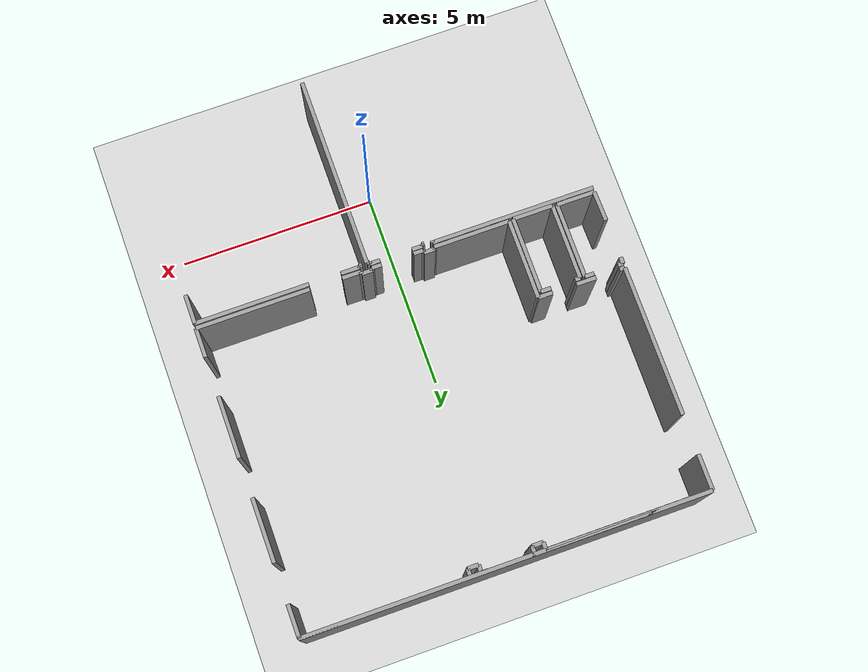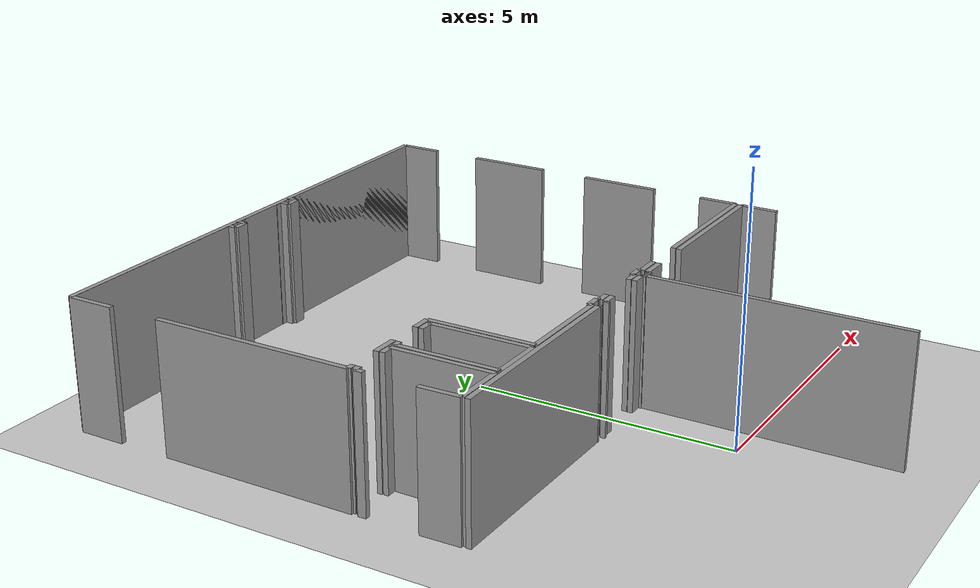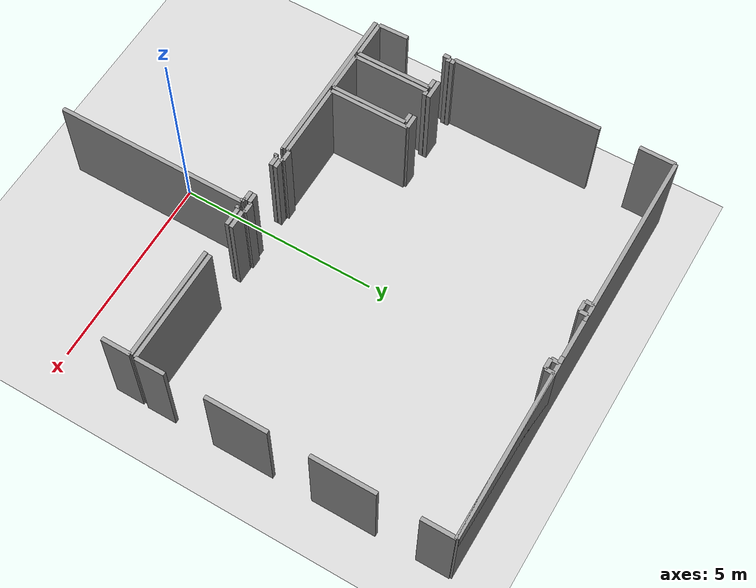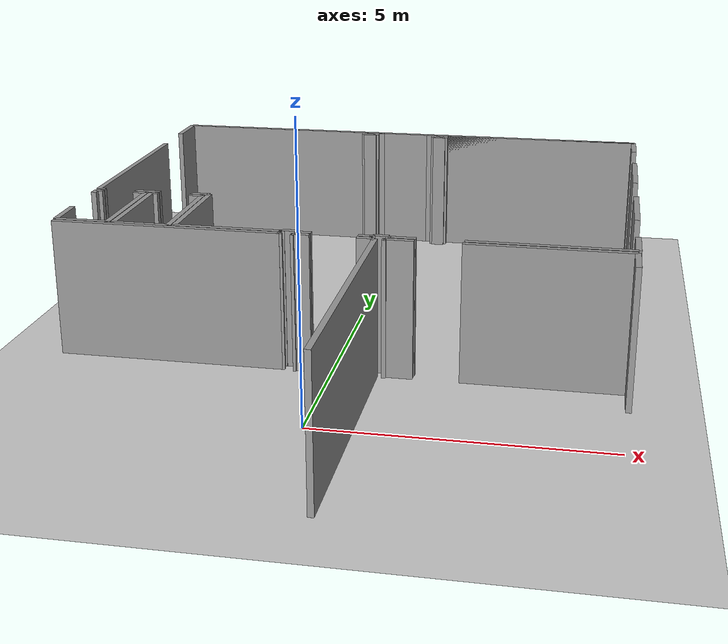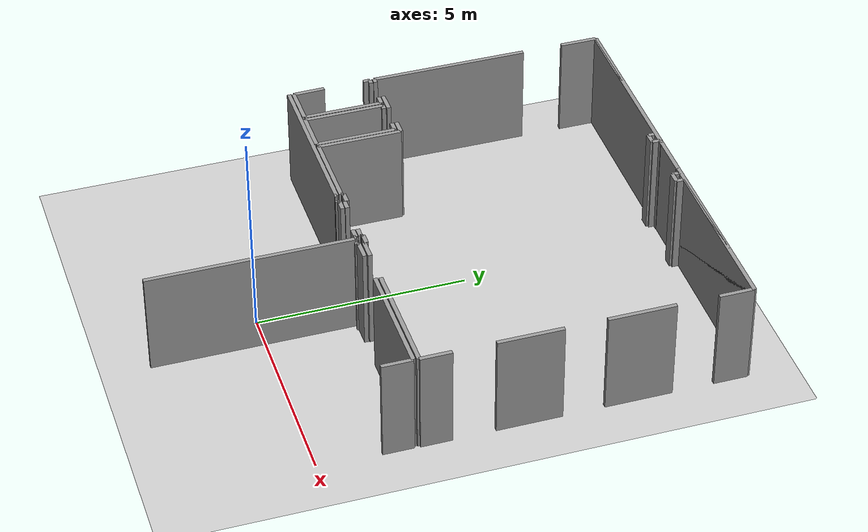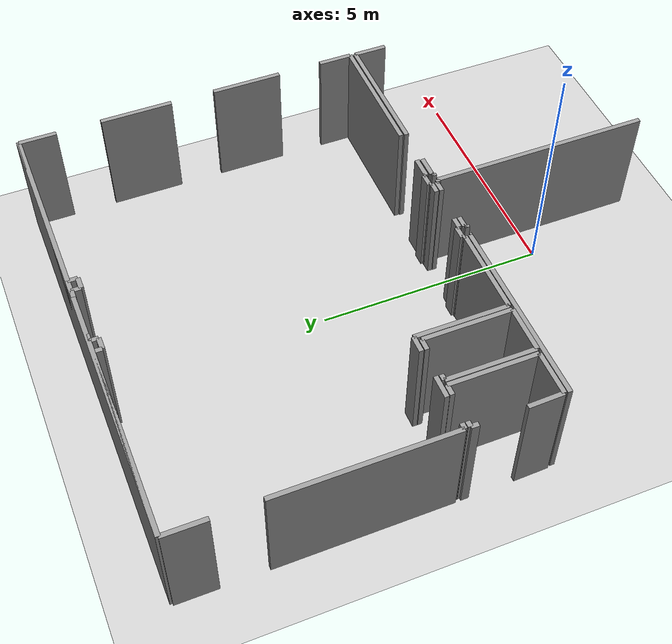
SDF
<sdf version="1.6">
 <world name="default">
  <model name="ground_plane">
   <static>1</static>
   <link name="link">
    <collision name="collision">
     <geometry><plane><normal>0 0 1</normal><size>100 100</size></plane></geometry>
     <surface><friction><ode><mu>100</mu><mu2>50</mu2></ode></friction></surface>
    </collision>
    <visual name="visual">
     <cast_shadows>0</cast_shadows>
     <geometry><plane><normal>0 0 1</normal><size>100 100</size></plane></geometry>
     <material>
      <script><uri>file://media/materials/scripts/gazebo.material</uri><name>Gazebo/Grey</name></script>
     </material>
    </visual>
   </link>
  </model>
  <model name="50009419">
   <static>1</static>
   <link name="Wall_0">
    <collision name="Wall_0_Collision">
     <geometry><box><size>2.84174122724 0.1 2.5</size></box></geometry>
     <pose>1.42087061362 0 1.25 0 0 0</pose>
    </collision>
    <visual name="Wall_0_Visual">
     <pose>1.42087061362 0 1.25 0 0 0</pose>
     <geometry><box><size>2.84174122724 0.1 2.5</size></box></geometry>
     <material>
      <script><uri>file://media/materials/scripts/gazebo.material</uri><name>Gazebo/Grey</name></script>
      <ambient>1 1 1 1</ambient>
     </material>
    </visual>
    <pose>10.086997906 -7.64566279586 0 0 0 3.14159265359</pose>
   </link>
   <link name="Wall_1">
    <collision name="Wall_1_Collision">
     <geometry><box><size>0.470207500476 0.1 2.5</size></box></geometry>
     <pose>0.235103750238 0 1.25 0 0 0</pose>
    </collision>
    <visual name="Wall_1_Visual">
     <pose>0.235103750238 0 1.25 0 0 0</pose>
     <geometry><box><size>0.470207500476 0.1 2.5</size></box></geometry>
     <material>
      <script><uri>file://media/materials/scripts/gazebo.material</uri><name>Gazebo/Grey</name></script>
      <ambient>1 1 1 1</ambient>
     </material>
    </visual>
    <pose>6.43435497176 -7.64566279586 0 0 0 3.14159265359</pose>
   </link>
   <link name="Wall_2">
    <collision name="Wall_2_Collision">
     <geometry><box><size>0.0509550098357 0.1 2.5</size></box></geometry>
     <pose>0.0254775049178 0 1.25 0 0 0</pose>
    </collision>
    <visual name="Wall_2_Visual">
     <pose>0.0254775049178 0 1.25 0 0 0</pose>
     <geometry><box><size>0.0509550098357 0.1 2.5</size></box></geometry>
     <material>
      <script><uri>file://media/materials/scripts/gazebo.material</uri><name>Gazebo/Grey</name></script>
      <ambient>1 1 1 1</ambient>
     </material>
    </visual>
    <pose>5.96414747129 -7.64566279586 0 0 0 1.57079632679</pose>
   </link>
   <link name="Wall_3">
    <collision name="Wall_3_Collision">
     <geometry><box><size>0.273494511073 0.1 2.5</size></box></geometry>
     <pose>0.136747255537 0 1.25 0 0 0</pose>
    </collision>
    <visual name="Wall_3_Visual">
     <pose>0.136747255537 0 1.25 0 0 0</pose>
     <geometry><box><size>0.273494511073 0.1 2.5</size></box></geometry>
     <material>
      <script><uri>file://media/materials/scripts/gazebo.material</uri><name>Gazebo/Grey</name></script>
      <ambient>1 1 1 1</ambient>
     </material>
    </visual>
    <pose>5.96414747129 -7.59470778603 0 0 0 3.14159265359</pose>
   </link>
   <link name="Wall_4">
    <collision name="Wall_4_Collision">
     <geometry><box><size>0.0527952281236 0.1 2.5</size></box></geometry>
     <pose>0.0263976140618 0 1.25 0 0 0</pose>
    </collision>
    <visual name="Wall_4_Visual">
     <pose>0.0263976140618 0 1.25 0 0 0</pose>
     <geometry><box><size>0.0527952281236 0.1 2.5</size></box></geometry>
     <material>
      <script><uri>file://media/materials/scripts/gazebo.material</uri><name>Gazebo/Grey</name></script>
      <ambient>1 1 1 1</ambient>
     </material>
    </visual>
    <pose>5.69065296021 -7.59470778603 0 0 0 -1.57079632679</pose>
   </link>
   <link name="Wall_5">
    <collision name="Wall_5_Collision">
     <geometry><box><size>0.244685576496 0.1 2.5</size></box></geometry>
     <pose>0.122342788248 0 1.25 0 0 0</pose>
    </collision>
    <visual name="Wall_5_Visual">
     <pose>0.122342788248 0 1.25 0 0 0</pose>
     <geometry><box><size>0.244685576496 0.1 2.5</size></box></geometry>
     <material>
      <script><uri>file://media/materials/scripts/gazebo.material</uri><name>Gazebo/Grey</name></script>
      <ambient>1 1 1 1</ambient>
     </material>
    </visual>
    <pose>5.69065296021 -7.64750301415 0 0 0 3.14159265359</pose>
   </link>
   <link name="Wall_6">
    <collision name="Wall_6_Collision">
     <geometry><box><size>0.242781902405 0.1 2.5</size></box></geometry>
     <pose>0.121390951202 0 1.25 0 0 0</pose>
    </collision>
    <visual name="Wall_6_Visual">
     <pose>0.121390951202 0 1.25 0 0 0</pose>
     <geometry><box><size>0.242781902405 0.1 2.5</size></box></geometry>
     <material>
      <script><uri>file://media/materials/scripts/gazebo.material</uri><name>Gazebo/Grey</name></script>
      <ambient>1 1 1 1</ambient>
     </material>
    </visual>
    <pose>4.63360619329 -7.64750301415 0 0 0 3.14159265359</pose>
   </link>
   <link name="Wall_7">
    <collision name="Wall_7_Collision">
     <geometry><box><size>0.0575544133511 0.1 2.5</size></box></geometry>
     <pose>0.0287772066756 0 1.25 0 0 0</pose>
    </collision>
    <visual name="Wall_7_Visual">
     <pose>0.0287772066756 0 1.25 0 0 0</pose>
     <geometry><box><size>0.0575544133511 0.1 2.5</size></box></geometry>
     <material>
      <script><uri>file://media/materials/scripts/gazebo.material</uri><name>Gazebo/Grey</name></script>
      <ambient>1 1 1 1</ambient>
     </material>
    </visual>
    <pose>4.39082429088 -7.64750301415 0 0 0 1.57079632679</pose>
   </link>
   <link name="Wall_8">
    <collision name="Wall_8_Collision">
     <geometry><box><size>0.275905831588 0.1 2.5</size></box></geometry>
     <pose>0.137952915794 0 1.25 0 0 0</pose>
    </collision>
    <visual name="Wall_8_Visual">
     <pose>0.137952915794 0 1.25 0 0 0</pose>
     <geometry><box><size>0.275905831588 0.1 2.5</size></box></geometry>
     <material>
      <script><uri>file://media/materials/scripts/gazebo.material</uri><name>Gazebo/Grey</name></script>
      <ambient>1 1 1 1</ambient>
     </material>
    </visual>
    <pose>4.39082429088 -7.5899486008 0 0 0 3.14159265359</pose>
   </link>
   <link name="Wall_9">
    <collision name="Wall_9_Collision">
     <geometry><box><size>0.0551430928358 0.1 2.5</size></box></geometry>
     <pose>0.0275715464179 0 1.25 0 0 0</pose>
    </collision>
    <visual name="Wall_9_Visual">
     <pose>0.0275715464179 0 1.25 0 0 0</pose>
     <geometry><box><size>0.0551430928358 0.1 2.5</size></box></geometry>
     <material>
      <script><uri>file://media/materials/scripts/gazebo.material</uri><name>Gazebo/Grey</name></script>
      <ambient>1 1 1 1</ambient>
     </material>
    </visual>
    <pose>4.11491845929 -7.5899486008 0 0 0 -1.57079632679</pose>
   </link>
   <link name="Wall_10">
    <collision name="Wall_10_Collision">
     <geometry><box><size>1.90944856907 0.1 2.5</size></box></geometry>
     <pose>0.954724284536 0 1.25 0 0 0</pose>
    </collision>
    <visual name="Wall_10_Visual">
     <pose>0.954724284536 0 1.25 0 0 0</pose>
     <geometry><box><size>1.90944856907 0.1 2.5</size></box></geometry>
     <material>
      <script><uri>file://media/materials/scripts/gazebo.material</uri><name>Gazebo/Grey</name></script>
      <ambient>1 1 1 1</ambient>
     </material>
    </visual>
    <pose>4.11491845929 -7.64509169364 0 0 0 3.14159265359</pose>
   </link>
   <link name="Wall_11">
    <collision name="Wall_11_Collision">
     <geometry><box><size>1.99828669332 0.1 2.5</size></box></geometry>
     <pose>0.999143346659 0 1.25 0 0 0</pose>
    </collision>
    <visual name="Wall_11_Visual">
     <pose>0.999143346659 0 1.25 0 0 0</pose>
     <geometry><box><size>1.99828669332 0.1 2.5</size></box></geometry>
     <material>
      <script><uri>file://media/materials/scripts/gazebo.material</uri><name>Gazebo/Grey</name></script>
      <ambient>1 1 1 1</ambient>
     </material>
    </visual>
    <pose>2.20546989022 -7.64509169364 0 0 0 1.57079632679</pose>
   </link>
   <link name="Wall_12">
    <collision name="Wall_12_Collision">
     <geometry><box><size>0.362205723713 0.1 2.5</size></box></geometry>
     <pose>0.181102861857 0 1.25 0 0 0</pose>
    </collision>
    <visual name="Wall_12_Visual">
     <pose>0.181102861857 0 1.25 0 0 0</pose>
     <geometry><box><size>0.362205723713 0.1 2.5</size></box></geometry>
     <material>
      <script><uri>file://media/materials/scripts/gazebo.material</uri><name>Gazebo/Grey</name></script>
      <ambient>1 1 1 1</ambient>
     </material>
    </visual>
    <pose>2.20546989022 -5.64680500032 0 0 0 3.14159265359</pose>
   </link>
   <link name="Wall_13">
    <collision name="Wall_13_Collision">
     <geometry><box><size>0.495335998477 0.1 2.5</size></box></geometry>
     <pose>0.247667999239 0 1.25 0 0 0</pose>
    </collision>
    <visual name="Wall_13_Visual">
     <pose>0.247667999239 0 1.25 0 0 0</pose>
     <geometry><box><size>0.495335998477 0.1 2.5</size></box></geometry>
     <material>
      <script><uri>file://media/materials/scripts/gazebo.material</uri><name>Gazebo/Grey</name></script>
      <ambient>1 1 1 1</ambient>
     </material>
    </visual>
    <pose>1.2344057364 -5.64680500032 0 0 0 3.14159265359</pose>
   </link>
   <link name="Wall_14">
    <collision name="Wall_14_Collision">
     <geometry><box><size>0.132495716733 0.1 2.5</size></box></geometry>
     <pose>0.0662478583666 0 1.25 0 0 0</pose>
    </collision>
    <visual name="Wall_14_Visual">
     <pose>0.0662478583666 0 1.25 0 0 0</pose>
     <geometry><box><size>0.132495716733 0.1 2.5</size></box></geometry>
     <material>
      <script><uri>file://media/materials/scripts/gazebo.material</uri><name>Gazebo/Grey</name></script>
      <ambient>1 1 1 1</ambient>
     </material>
    </visual>
    <pose>0.139666222476 -5.64680500032 0 0 0 3.14159265359</pose>
   </link>
   <link name="Wall_15">
    <collision name="Wall_15_Collision">
     <geometry><box><size>3.76648264484 0.1 2.5</size></box></geometry>
     <pose>1.88324132242 0 1.25 0 0 0</pose>
    </collision>
    <visual name="Wall_15_Visual">
     <pose>1.88324132242 0 1.25 0 0 0</pose>
     <geometry><box><size>3.76648264484 0.1 2.5</size></box></geometry>
     <material>
      <script><uri>file://media/materials/scripts/gazebo.material</uri><name>Gazebo/Grey</name></script>
      <ambient>1 1 1 1</ambient>
     </material>
    </visual>
    <pose>0.00717050574275 -5.64680500032 0 0 0 1.57079632679</pose>
   </link>
   <link name="Wall_16">
    <collision name="Wall_16_Collision">
     <geometry><box><size>0.89561520401 0.1 2.5</size></box></geometry>
     <pose>0.447807602005 0 1.25 0 0 0</pose>
    </collision>
    <visual name="Wall_16_Visual">
     <pose>0.447807602005 0 1.25 0 0 0</pose>
     <geometry><box><size>0.89561520401 0.1 2.5</size></box></geometry>
     <material>
      <script><uri>file://media/materials/scripts/gazebo.material</uri><name>Gazebo/Grey</name></script>
      <ambient>1 1 1 1</ambient>
     </material>
    </visual>
    <pose>0.00717050574275 -0.898470715147 0 0 0 1.57079632679</pose>
   </link>
   <link name="Wall_17">
    <collision name="Wall_17_Collision">
     <geometry><box><size>4.10774795355 0.1 2.5</size></box></geometry>
     <pose>2.05387397678 0 1.25 0 0 0</pose>
    </collision>
    <visual name="Wall_17_Visual">
     <pose>2.05387397678 0 1.25 0 0 0</pose>
     <geometry><box><size>4.10774795355 0.1 2.5</size></box></geometry>
     <material>
      <script><uri>file://media/materials/scripts/gazebo.material</uri><name>Gazebo/Grey</name></script>
      <ambient>1 1 1 1</ambient>
     </material>
    </visual>
    <pose>0.00717050574275 -0.00285551113649 0 0 0 0.0</pose>
   </link>
   <link name="Wall_18">
    <collision name="Wall_18_Collision">
     <geometry><box><size>0.188273367599 0.1 2.5</size></box></geometry>
     <pose>0.0941366837997 0 1.25 0 0 0</pose>
    </collision>
    <visual name="Wall_18_Visual">
     <pose>0.0941366837997 0 1.25 0 0 0</pose>
     <geometry><box><size>0.188273367599 0.1 2.5</size></box></geometry>
     <material>
      <script><uri>file://media/materials/scripts/gazebo.material</uri><name>Gazebo/Grey</name></script>
      <ambient>1 1 1 1</ambient>
     </material>
    </visual>
    <pose>4.11491845929 -0.00285551113649 0 0 0 -1.57079632679</pose>
   </link>
   <link name="Wall_19">
    <collision name="Wall_19_Collision">
     <geometry><box><size>0.270638999937 0.1 2.5</size></box></geometry>
     <pose>0.135319499968 0 1.25 0 0 0</pose>
    </collision>
    <visual name="Wall_19_Visual">
     <pose>0.135319499968 0 1.25 0 0 0</pose>
     <geometry><box><size>0.270638999937 0.1 2.5</size></box></geometry>
     <material>
      <script><uri>file://media/materials/scripts/gazebo.material</uri><name>Gazebo/Grey</name></script>
      <ambient>1 1 1 1</ambient>
     </material>
    </visual>
    <pose>4.11491845929 -0.191128878736 0 0 0 0.0</pose>
   </link>
   <link name="Wall_20">
    <collision name="Wall_20_Collision">
     <geometry><box><size>0.182308522114 0.1 2.5</size></box></geometry>
     <pose>0.0911542610572 0 1.25 0 0 0</pose>
    </collision>
    <visual name="Wall_20_Visual">
     <pose>0.0911542610572 0 1.25 0 0 0</pose>
     <geometry><box><size>0.182308522114 0.1 2.5</size></box></geometry>
     <material>
      <script><uri>file://media/materials/scripts/gazebo.material</uri><name>Gazebo/Grey</name></script>
      <ambient>1 1 1 1</ambient>
     </material>
    </visual>
    <pose>4.38555745923 -0.191128878736 0 0 0 1.57079632679</pose>
   </link>
   <link name="Wall_21">
    <collision name="Wall_21_Collision">
     <geometry><box><size>0.164604353068 0.1 2.5</size></box></geometry>
     <pose>0.082302176534 0 1.25 0 0 0</pose>
    </collision>
    <visual name="Wall_21_Visual">
     <pose>0.082302176534 0 1.25 0 0 0</pose>
     <geometry><box><size>0.164604353068 0.1 2.5</size></box></geometry>
     <material>
      <script><uri>file://media/materials/scripts/gazebo.material</uri><name>Gazebo/Grey</name></script>
      <ambient>1 1 1 1</ambient>
     </material>
    </visual>
    <pose>4.38555745923 -0.00882035662161 0 0 0 0.0</pose>
   </link>
   <link name="Wall_22">
    <collision name="Wall_22_Collision">
     <geometry><box><size>0.17050574275 0.1 2.5</size></box></geometry>
     <pose>0.0852528713751 0 1.25 0 0 0</pose>
    </collision>
    <visual name="Wall_22_Visual">
     <pose>0.0852528713751 0 1.25 0 0 0</pose>
     <geometry><box><size>0.17050574275 0.1 2.5</size></box></geometry>
     <material>
      <script><uri>file://media/materials/scripts/gazebo.material</uri><name>Gazebo/Grey</name></script>
      <ambient>1 1 1 1</ambient>
     </material>
    </visual>
    <pose>5.5188781014 -0.00882035662161 0 0 0 0.0</pose>
   </link>
   <link name="Wall_23">
    <collision name="Wall_23_Collision">
     <geometry><box><size>0.194365124691 0.1 2.5</size></box></geometry>
     <pose>0.0971825623453 0 1.25 0 0 0</pose>
    </collision>
    <visual name="Wall_23_Visual">
     <pose>0.0971825623453 0 1.25 0 0 0</pose>
     <geometry><box><size>0.194365124691 0.1 2.5</size></box></geometry>
     <material>
      <script><uri>file://media/materials/scripts/gazebo.material</uri><name>Gazebo/Grey</name></script>
      <ambient>1 1 1 1</ambient>
     </material>
    </visual>
    <pose>5.68938384415 -0.00882035662161 0 0 0 -1.57079632679</pose>
   </link>
   <link name="Wall_24">
    <collision name="Wall_24_Collision">
     <geometry><box><size>0.264864521861 0.1 2.5</size></box></geometry>
     <pose>0.13243226093 0 1.25 0 0 0</pose>
    </collision>
    <visual name="Wall_24_Visual">
     <pose>0.13243226093 0 1.25 0 0 0</pose>
     <geometry><box><size>0.264864521861 0.1 2.5</size></box></geometry>
     <material>
      <script><uri>file://media/materials/scripts/gazebo.material</uri><name>Gazebo/Grey</name></script>
      <ambient>1 1 1 1</ambient>
     </material>
    </visual>
    <pose>5.68938384415 -0.203185481312 0 0 0 0.0</pose>
   </link>
   <link name="Wall_25">
    <collision name="Wall_25_Collision">
     <geometry><box><size>0.203185481312 0.1 2.5</size></box></geometry>
     <pose>0.101592740656 0 1.25 0 0 0</pose>
    </collision>
    <visual name="Wall_25_Visual">
     <pose>0.101592740656 0 1.25 0 0 0</pose>
     <geometry><box><size>0.203185481312 0.1 2.5</size></box></geometry>
     <material>
      <script><uri>file://media/materials/scripts/gazebo.material</uri><name>Gazebo/Grey</name></script>
      <ambient>1 1 1 1</ambient>
     </material>
    </visual>
    <pose>5.95424836601 -0.203185481312 0 0 0 1.57079632679</pose>
   </link>
   <link name="Wall_26">
    <collision name="Wall_26_Collision">
     <geometry><box><size>4.13103623326 0.1 2.5</size></box></geometry>
     <pose>2.06551811663 0 1.25 0 0 0</pose>
    </collision>
    <visual name="Wall_26_Visual">
     <pose>2.06551811663 0 1.25 0 0 0</pose>
     <geometry><box><size>4.13103623326 0.1 2.5</size></box></geometry>
     <material>
      <script><uri>file://media/materials/scripts/gazebo.material</uri><name>Gazebo/Grey</name></script>
      <ambient>1 1 1 1</ambient>
     </material>
    </visual>
    <pose>5.95424836601 -0.0 0 0 0 0.0</pose>
   </link>
   <link name="Wall_27">
    <collision name="Wall_27_Collision">
     <geometry><box><size>0.814899422552 0.1 2.5</size></box></geometry>
     <pose>0.407449711276 0 1.25 0 0 0</pose>
    </collision>
    <visual name="Wall_27_Visual">
     <pose>0.407449711276 0 1.25 0 0 0</pose>
     <geometry><box><size>0.814899422552 0.1 2.5</size></box></geometry>
     <material>
      <script><uri>file://media/materials/scripts/gazebo.material</uri><name>Gazebo/Grey</name></script>
      <ambient>1 1 1 1</ambient>
     </material>
    </visual>
    <pose>10.0852845993 -0.0 0 0 0 -1.57079632679</pose>
   </link>
   <link name="Wall_28">
    <collision name="Wall_28_Collision">
     <geometry><box><size>1.59299447935 0.1 2.5</size></box></geometry>
     <pose>0.796497239673 0 1.25 0 0 0</pose>
    </collision>
    <visual name="Wall_28_Visual">
     <pose>0.796497239673 0 1.25 0 0 0</pose>
     <geometry><box><size>1.59299447935 0.1 2.5</size></box></geometry>
     <material>
      <script><uri>file://media/materials/scripts/gazebo.material</uri><name>Gazebo/Grey</name></script>
      <ambient>1 1 1 1</ambient>
     </material>
    </visual>
    <pose>10.0852845993 -1.79852782537 0 0 0 -1.57079632679</pose>
   </link>
   <link name="Wall_29">
    <collision name="Wall_29_Collision">
     <geometry><box><size>1.54502189225 0.1 2.5</size></box></geometry>
     <pose>0.772510946126 0 1.25 0 0 0</pose>
    </collision>
    <visual name="Wall_29_Visual">
     <pose>0.772510946126 0 1.25 0 0 0</pose>
     <geometry><box><size>1.54502189225 0.1 2.5</size></box></geometry>
     <material>
      <script><uri>file://media/materials/scripts/gazebo.material</uri><name>Gazebo/Grey</name></script>
      <ambient>1 1 1 1</ambient>
     </material>
    </visual>
    <pose>10.0852845993 -4.3703280665 0 0 0 -1.57079632679</pose>
   </link>
   <link name="Wall_30">
    <collision name="Wall_30_Collision">
     <geometry><box><size>0.741863771673 0.1 2.5</size></box></geometry>
     <pose>0.370931885836 0 1.25 0 0 0</pose>
    </collision>
    <visual name="Wall_30_Visual">
     <pose>0.370931885836 0 1.25 0 0 0</pose>
     <geometry><box><size>0.741863771673 0.1 2.5</size></box></geometry>
     <material>
      <script><uri>file://media/materials/scripts/gazebo.material</uri><name>Gazebo/Grey</name></script>
      <ambient>1 1 1 1</ambient>
     </material>
    </visual>
    <pose>10.0852845993 -6.9038010026 0 0 0 -1.56848686208</pose>
   </link>
   <link name="Wall_31">
    <collision name="Wall_31_Collision">
     <geometry><box><size>1.903674091 0.1 2.5</size></box></geometry>
     <pose>0.951837045498 0 1.25 0 0 0</pose>
    </collision>
    <visual name="Wall_31_Visual">
     <pose>0.951837045498 0 1.25 0 0 0</pose>
     <geometry><box><size>1.903674091 0.1 2.5</size></box></geometry>
     <material>
      <script><uri>file://media/materials/scripts/gazebo.material</uri><name>Gazebo/Grey</name></script>
      <ambient>1 1 1 1</ambient>
     </material>
    </visual>
    <pose>2.09759502507 -7.66469953677 0 0 0 1.57079632679</pose>
   </link>
   <link name="Wall_32">
    <collision name="Wall_32_Collision">
     <geometry><box><size>0.255092328193 0.1 2.5</size></box></geometry>
     <pose>0.127546164097 0 1.25 0 0 0</pose>
    </collision>
    <visual name="Wall_32_Visual">
     <pose>0.127546164097 0 1.25 0 0 0</pose>
     <geometry><box><size>0.255092328193 0.1 2.5</size></box></geometry>
     <material>
      <script><uri>file://media/materials/scripts/gazebo.material</uri><name>Gazebo/Grey</name></script>
      <ambient>1 1 1 1</ambient>
     </material>
    </visual>
    <pose>2.09759502507 -5.76102544578 0 0 0 3.14159265359</pose>
   </link>
   <link name="Wall_33">
    <collision name="Wall_33_Collision">
     <geometry><box><size>0.13243226093 0.1 2.5</size></box></geometry>
     <pose>0.0662161304651 0 1.25 0 0 0</pose>
    </collision>
    <visual name="Wall_33_Visual">
     <pose>0.0662161304651 0 1.25 0 0 0</pose>
     <geometry><box><size>0.13243226093 0.1 2.5</size></box></geometry>
     <material>
      <script><uri>file://media/materials/scripts/gazebo.material</uri><name>Gazebo/Grey</name></script>
      <ambient>1 1 1 1</ambient>
     </material>
    </visual>
    <pose>1.22907544895 -5.76102544578 0 0 0 3.14159265359</pose>
   </link>
   <link name="Wall_34">
    <collision name="Wall_34_Collision">
     <geometry><box><size>1.90062821245 0.1 2.5</size></box></geometry>
     <pose>0.950314106225 0 1.25 0 0 0</pose>
    </collision>
    <visual name="Wall_34_Visual">
     <pose>0.950314106225 0 1.25 0 0 0</pose>
     <geometry><box><size>1.90062821245 0.1 2.5</size></box></geometry>
     <material>
      <script><uri>file://media/materials/scripts/gazebo.material</uri><name>Gazebo/Grey</name></script>
      <ambient>1 1 1 1</ambient>
     </material>
    </visual>
    <pose>1.09664318802 -5.76102544578 0 0 0 -1.57079632679</pose>
   </link>
   <link name="Wall_35">
    <collision name="Wall_35_Collision">
     <geometry><box><size>1.00095647131 0.1 2.5</size></box></geometry>
     <pose>0.500478235656 0 1.25 0 0 0</pose>
    </collision>
    <visual name="Wall_35_Visual">
     <pose>0.500478235656 0 1.25 0 0 0</pose>
     <geometry><box><size>1.00095647131 0.1 2.5</size></box></geometry>
     <material>
      <script><uri>file://media/materials/scripts/gazebo.material</uri><name>Gazebo/Grey</name></script>
      <ambient>1 1 1 1</ambient>
     </material>
    </visual>
    <pose>1.09664318802 -7.66165365823 0 0 0 -0.00304297273012</pose>
   </link>
   <link name="Wall_36">
    <collision name="Wall_36_Collision">
     <geometry><box><size>0.95481946824 0.1 2.5</size></box></geometry>
     <pose>0.47740973412 0 1.25 0 0 0</pose>
    </collision>
    <visual name="Wall_36_Visual">
     <pose>0.47740973412 0 1.25 0 0 0</pose>
     <geometry><box><size>0.95481946824 0.1 2.5</size></box></geometry>
     <material>
      <script><uri>file://media/materials/scripts/gazebo.material</uri><name>Gazebo/Grey</name></script>
      <ambient>1 1 1 1</ambient>
     </material>
    </visual>
    <pose>0.0288089345771 -7.64750301415 0 0 0 0.0</pose>
   </link>
   <link name="Wall_37">
    <collision name="Wall_37_Collision">
     <geometry><box><size>1.89047528396 0.1 2.5</size></box></geometry>
     <pose>0.945237641982 0 1.25 0 0 0</pose>
    </collision>
    <visual name="Wall_37_Visual">
     <pose>0.945237641982 0 1.25 0 0 0</pose>
     <geometry><box><size>1.89047528396 0.1 2.5</size></box></geometry>
     <material>
      <script><uri>file://media/materials/scripts/gazebo.material</uri><name>Gazebo/Grey</name></script>
      <ambient>1 1 1 1</ambient>
     </material>
    </visual>
    <pose>0.983628402817 -7.64750301415 0 0 0 1.57079632679</pose>
   </link>
   <link name="Wall_38">
    <collision name="Wall_38_Collision">
     <geometry><box><size>0.235103750238 0.1 2.5</size></box></geometry>
     <pose>0.117551875119 0 1.25 0 0 0</pose>
    </collision>
    <visual name="Wall_38_Visual">
     <pose>0.117551875119 0 1.25 0 0 0</pose>
     <geometry><box><size>0.235103750238 0.1 2.5</size></box></geometry>
     <material>
      <script><uri>file://media/materials/scripts/gazebo.material</uri><name>Gazebo/Grey</name></script>
      <ambient>1 1 1 1</ambient>
     </material>
    </visual>
    <pose>0.983628402817 -5.75702773019 0 0 0 3.14159265359</pose>
   </link>
   <link name="Wall_39">
    <collision name="Wall_39_Collision">
     <geometry><box><size>0.126975061869 0.1 2.5</size></box></geometry>
     <pose>0.0634875309347 0 1.25 0 0 0</pose>
    </collision>
    <visual name="Wall_39_Visual">
     <pose>0.0634875309347 0 1.25 0 0 0</pose>
     <geometry><box><size>0.126975061869 0.1 2.5</size></box></geometry>
     <material>
      <script><uri>file://media/materials/scripts/gazebo.material</uri><name>Gazebo/Grey</name></script>
      <ambient>1 1 1 1</ambient>
     </material>
    </visual>
    <pose>0.138397106415 -5.75702773019 0 0 0 3.14159265359</pose>
   </link>
   <link name="Wall_40">
    <collision name="Wall_40_Collision">
     <geometry><box><size>0.164033250841 0.1 2.5</size></box></geometry>
     <pose>0.0820166254204 0 1.25 0 0 0</pose>
    </collision>
    <visual name="Wall_40_Visual">
     <pose>0.0820166254204 0 1.25 0 0 0</pose>
     <geometry><box><size>0.164033250841 0.1 2.5</size></box></geometry>
     <material>
      <script><uri>file://media/materials/scripts/gazebo.material</uri><name>Gazebo/Grey</name></script>
      <ambient>1 1 1 1</ambient>
     </material>
    </visual>
    <pose>0.011422044546 -5.75702773019 0 0 0 -1.57079632679</pose>
   </link>
   <link name="Wall_41">
    <collision name="Wall_41_Collision">
     <geometry><box><size>0.75430917451 0.1 2.5</size></box></geometry>
     <pose>0.377154587255 0 1.25 0 0 0</pose>
    </collision>
    <visual name="Wall_41_Visual">
     <pose>0.377154587255 0 1.25 0 0 0</pose>
     <geometry><box><size>0.75430917451 0.1 2.5</size></box></geometry>
     <material>
      <script><uri>file://media/materials/scripts/gazebo.material</uri><name>Gazebo/Grey</name></script>
      <ambient>1 1 1 1</ambient>
     </material>
    </visual>
    <pose>0.011422044546 -6.8933942509 0 0 0 -1.54774420094</pose>
   </link>
   <link name="Wall_54">
    <collision name="Wall_54_Collision">
     <geometry><box><size>4.10343295894 0.1 2.5</size></box></geometry>
     <pose>2.05171647947 0 1.25 0 0 0</pose>
    </collision>
    <visual name="Wall_54_Visual">
     <pose>2.05171647947 0 1.25 0 0 0</pose>
     <geometry><box><size>4.10343295894 0.1 2.5</size></box></geometry>
     <material>
      <script><uri>file://media/materials/scripts/gazebo.material</uri><name>Gazebo/Grey</name></script>
      <ambient>1 1 1 1</ambient>
     </material>
    </visual>
    <pose>0.00774160797005 -7.75690081858 0 0 0 0.0</pose>
   </link>
   <link name="Wall_55">
    <collision name="Wall_55_Collision">
     <geometry><box><size>0.0494955263659 0.1 2.5</size></box></geometry>
     <pose>0.0247477631829 0 1.25 0 0 0</pose>
    </collision>
    <visual name="Wall_55_Visual">
     <pose>0.0247477631829 0 1.25 0 0 0</pose>
     <geometry><box><size>0.0494955263659 0.1 2.5</size></box></geometry>
     <material>
      <script><uri>file://media/materials/scripts/gazebo.material</uri><name>Gazebo/Grey</name></script>
      <ambient>1 1 1 1</ambient>
     </material>
    </visual>
    <pose>4.11117456691 -7.75690081858 0 0 0 -1.57079632679</pose>
   </link>
   <link name="Wall_60">
    <collision name="Wall_60_Collision">
     <geometry><box><size>0.0567929437147 0.1 2.5</size></box></geometry>
     <pose>0.0283964718574 0 1.25 0 0 0</pose>
    </collision>
    <visual name="Wall_60_Visual">
     <pose>0.0283964718574 0 1.25 0 0 0</pose>
     <geometry><box><size>0.0567929437147 0.1 2.5</size></box></geometry>
     <material>
      <script><uri>file://media/materials/scripts/gazebo.material</uri><name>Gazebo/Grey</name></script>
      <ambient>1 1 1 1</ambient>
     </material>
    </visual>
    <pose>4.31353512279 -7.80011422045 0 0 0 0.0</pose>
   </link>
   <link name="Wall_61">
    <collision name="Wall_61_Collision">
     <geometry><box><size>0.0410559045625 0.1 2.5</size></box></geometry>
     <pose>0.0205279522812 0 1.25 0 0 0</pose>
    </collision>
    <visual name="Wall_61_Visual">
     <pose>0.0205279522812 0 1.25 0 0 0</pose>
     <geometry><box><size>0.0410559045625 0.1 2.5</size></box></geometry>
     <material>
      <script><uri>file://media/materials/scripts/gazebo.material</uri><name>Gazebo/Grey</name></script>
      <ambient>1 1 1 1</ambient>
     </material>
    </visual>
    <pose>4.3703280665 -7.80011422045 0 0 0 1.57079632679</pose>
   </link>
   <link name="Wall_62">
    <collision name="Wall_62_Collision">
     <geometry><box><size>0.261882099118 0.1 2.5</size></box></geometry>
     <pose>0.130941049559 0 1.25 0 0 0</pose>
    </collision>
    <visual name="Wall_62_Visual">
     <pose>0.130941049559 0 1.25 0 0 0</pose>
     <geometry><box><size>0.261882099118 0.1 2.5</size></box></geometry>
     <material>
      <script><uri>file://media/materials/scripts/gazebo.material</uri><name>Gazebo/Grey</name></script>
      <ambient>1 1 1 1</ambient>
     </material>
    </visual>
    <pose>4.3703280665 -7.75905831588 0 0 0 0.0</pose>
   </link>
   <link name="Wall_63">
    <collision name="Wall_63_Collision">
     <geometry><box><size>0.251729170633 0.1 2.5</size></box></geometry>
     <pose>0.125864585316 0 1.25 0 0 0</pose>
    </collision>
    <visual name="Wall_63_Visual">
     <pose>0.125864585316 0 1.25 0 0 0</pose>
     <geometry><box><size>0.251729170633 0.1 2.5</size></box></geometry>
     <material>
      <script><uri>file://media/materials/scripts/gazebo.material</uri><name>Gazebo/Grey</name></script>
      <ambient>1 1 1 1</ambient>
     </material>
    </visual>
    <pose>5.44038327305 -7.75905831588 0 0 0 0.0</pose>
   </link>
   <link name="Wall_64">
    <collision name="Wall_64_Collision">
     <geometry><box><size>0.0460689130021 0.1 2.5</size></box></geometry>
     <pose>0.023034456501 0 1.25 0 0 0</pose>
    </collision>
    <visual name="Wall_64_Visual">
     <pose>0.023034456501 0 1.25 0 0 0</pose>
     <geometry><box><size>0.0460689130021 0.1 2.5</size></box></geometry>
     <material>
      <script><uri>file://media/materials/scripts/gazebo.material</uri><name>Gazebo/Grey</name></script>
      <ambient>1 1 1 1</ambient>
     </material>
    </visual>
    <pose>5.69211244368 -7.75905831588 0 0 0 -1.57079632679</pose>
   </link>
   <link name="Wall_65">
    <collision name="Wall_65_Collision">
     <geometry><box><size>0.0671362396091 0.1 2.5</size></box></geometry>
     <pose>0.0335681198046 0 1.25 0 0 0</pose>
    </collision>
    <visual name="Wall_65_Visual">
     <pose>0.0335681198046 0 1.25 0 0 0</pose>
     <geometry><box><size>0.0671362396091 0.1 2.5</size></box></geometry>
     <material>
      <script><uri>file://media/materials/scripts/gazebo.material</uri><name>Gazebo/Grey</name></script>
      <ambient>1 1 1 1</ambient>
     </material>
    </visual>
    <pose>5.69211244368 -7.80512722889 0 0 0 0.0</pose>
   </link>
   <link name="Wall_66">
    <collision name="Wall_66_Collision">
     <geometry><box><size>4.82181610508 0.1 2.5</size></box></geometry>
     <pose>2.41090805254 0 1.25 0 0 0</pose>
    </collision>
    <visual name="Wall_66_Visual">
     <pose>2.41090805254 0 1.25 0 0 0</pose>
     <geometry><box><size>4.82181610508 0.1 2.5</size></box></geometry>
     <material>
      <script><uri>file://media/materials/scripts/gazebo.material</uri><name>Gazebo/Grey</name></script>
      <ambient>1 1 1 1</ambient>
     </material>
    </visual>
    <pose>5.75924868329 -7.80512722889 0 0 0 -1.57079632679</pose>
   </link>
   <link name="Wall_73">
    <collision name="Wall_73_Collision">
     <geometry><box><size>0.0739260105337 0.1 2.5</size></box></geometry>
     <pose>0.0369630052668 0 1.25 0 0 0</pose>
    </collision>
    <visual name="Wall_73_Visual">
     <pose>0.0369630052668 0 1.25 0 0 0</pose>
     <geometry><box><size>0.0739260105337 0.1 2.5</size></box></geometry>
     <material>
      <script><uri>file://media/materials/scripts/gazebo.material</uri><name>Gazebo/Grey</name></script>
      <ambient>1 1 1 1</ambient>
     </material>
    </visual>
    <pose>5.88063963449 -7.80106605749 0 0 0 0.0</pose>
   </link>
   <link name="Wall_74">
    <collision name="Wall_74_Collision">
     <geometry><box><size>0.0336315756076 0.1 2.5</size></box></geometry>
     <pose>0.0168157878038 0 1.25 0 0 0</pose>
    </collision>
    <visual name="Wall_74_Visual">
     <pose>0.0168157878038 0 1.25 0 0 0</pose>
     <geometry><box><size>0.0336315756076 0.1 2.5</size></box></geometry>
     <material>
      <script><uri>file://media/materials/scripts/gazebo.material</uri><name>Gazebo/Grey</name></script>
      <ambient>1 1 1 1</ambient>
     </material>
    </visual>
    <pose>5.95456564503 -7.80106605749 0 0 0 1.57079632679</pose>
   </link>
   <link name="Wall_75">
    <collision name="Wall_75_Collision">
     <geometry><box><size>0.465384859445 0.1 2.5</size></box></geometry>
     <pose>0.232692429723 0 1.25 0 0 0</pose>
    </collision>
    <visual name="Wall_75_Visual">
     <pose>0.232692429723 0 1.25 0 0 0</pose>
     <geometry><box><size>0.465384859445 0.1 2.5</size></box></geometry>
     <material>
      <script><uri>file://media/materials/scripts/gazebo.material</uri><name>Gazebo/Grey</name></script>
      <ambient>1 1 1 1</ambient>
     </material>
    </visual>
    <pose>5.95456564503 -7.76743448188 0 0 0 0.0</pose>
   </link>
   <link name="Wall_76">
    <collision name="Wall_76_Collision">
     <geometry><box><size>2.84548511961 0.1 2.5</size></box></geometry>
     <pose>1.42274255981 0 1.25 0 0 0</pose>
    </collision>
    <visual name="Wall_76_Visual">
     <pose>1.42274255981 0 1.25 0 0 0</pose>
     <geometry><box><size>2.84548511961 0.1 2.5</size></box></geometry>
     <material>
      <script><uri>file://media/materials/scripts/gazebo.material</uri><name>Gazebo/Grey</name></script>
      <ambient>1 1 1 1</ambient>
     </material>
    </visual>
    <pose>7.22609302621 -7.76743448188 0 0 0 0.0</pose>
   </link>
   <link name="Wall_77">
    <collision name="Wall_77_Collision">
     <geometry><box><size>0.728282251412 0.1 2.5</size></box></geometry>
     <pose>0.364141125706 0 1.25 0 0 0</pose>
    </collision>
    <visual name="Wall_77_Visual">
     <pose>0.364141125706 0 1.25 0 0 0</pose>
     <geometry><box><size>0.728282251412 0.1 2.5</size></box></geometry>
     <material>
      <script><uri>file://media/materials/scripts/gazebo.material</uri><name>Gazebo/Grey</name></script>
      <ambient>1 1 1 1</ambient>
     </material>
    </visual>
    <pose>10.0715781458 -7.76743448188 0 0 0 -1.57079632679</pose>
   </link>
   <link name="Wall_168">
    <collision name="Wall_168_Collision">
     <geometry><box><size>10.1063519259 0.1 2.5</size></box></geometry>
     <pose>5.05317596294 0 1.25 0 0 0</pose>
    </collision>
    <visual name="Wall_168_Visual">
     <pose>5.05317596294 0 1.25 0 0 0</pose>
     <geometry><box><size>10.1063519259 0.1 2.5</size></box></geometry>
     <material>
      <script><uri>file://media/materials/scripts/gazebo.material</uri><name>Gazebo/Grey</name></script>
      <ambient>1 1 1 1</ambient>
     </material>
    </visual>
   </link>
   <pose>-5.0 9.97398312076 0 0 0 0</pose>
  </model>
 </world>
</sdf>
